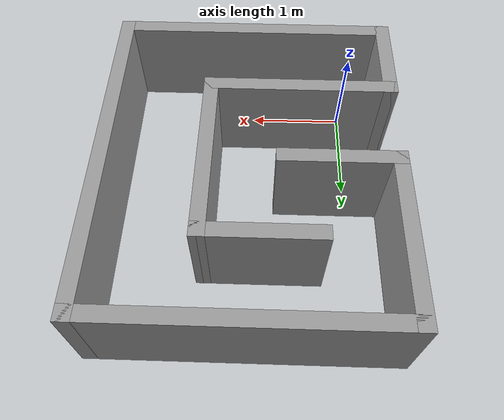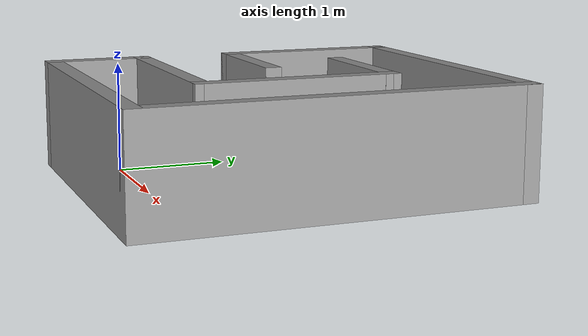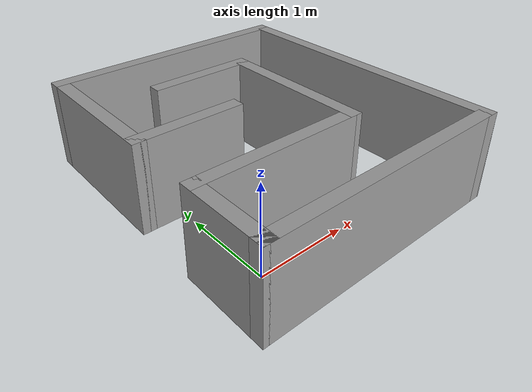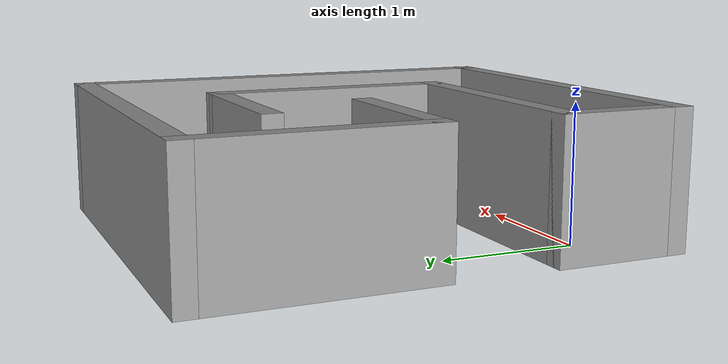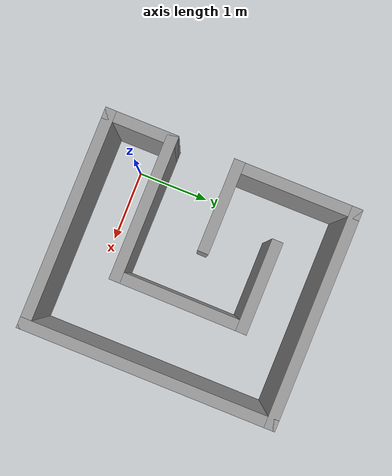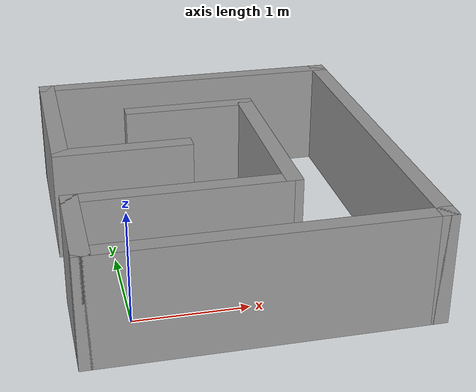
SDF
<?xml version='1.0'?>
<sdf version='1.7'>
  <model name='maze_1'>
    <pose>1.015 1.165 0 0 -0 0</pose>
    <link name='Wall_0'>
      <collision name='Wall_0_Collision'>
        <geometry>
          <box>
            <size>3 0.15 1</size>
          </box>
        </geometry>
        <pose>0 0 0.5 0 -0 0</pose>
      </collision>
      <visual name='Wall_0_Visual'>
        <pose>0 0 0.5 0 -0 0</pose>
        <geometry>
          <box>
            <size>3 0.15 1</size>
          </box>
        </geometry>
        <material>
          <script>
            <uri>file://media/materials/scripts/gazebo.material</uri>
            <name>Gazebo/Grey</name>
          </script>
          <ambient>1 1 1 1</ambient>
        </material>
        <meta>
          <layer>0</layer>
        </meta>
      </visual>
      <pose>-0 -1.675 0 0 -0 0</pose>
    </link>
    <link name='Wall_11'>
      <collision name='Wall_11_Collision'>
        <geometry>
          <box>
            <size>1 0.15 1</size>
          </box>
        </geometry>
        <pose>0 0 0.5 0 -0 0</pose>
      </collision>
      <visual name='Wall_11_Visual'>
        <pose>0 0 0.5 0 -0 0</pose>
        <geometry>
          <box>
            <size>1 0.15 1</size>
          </box>
        </geometry>
        <material>
          <script>
            <uri>file://media/materials/scripts/gazebo.material</uri>
            <name>Gazebo/Grey</name>
          </script>
          <ambient>1 1 1 1</ambient>
        </material>
        <meta>
          <layer>0</layer>
        </meta>
      </visual>
      <pose>-1.425 -1.25 0 0 -0 1.5708</pose>
    </link>
    <link name='Wall_12'>
      <collision name='Wall_12_Collision'>
        <geometry>
          <box>
            <size>2 0.15 1</size>
          </box>
        </geometry>
        <pose>0 0 0.5 0 -0 0</pose>
      </collision>
      <visual name='Wall_12_Visual'>
        <pose>0 0 0.5 0 -0 0</pose>
        <geometry>
          <box>
            <size>2 0.15 1</size>
          </box>
        </geometry>
        <material>
          <script>
            <uri>file://media/materials/scripts/gazebo.material</uri>
            <name>Gazebo/Grey</name>
          </script>
          <ambient>1 1 1 1</ambient>
        </material>
        <meta>
          <layer>0</layer>
        </meta>
      </visual>
      <pose>-0.5 -0.825 0 0 -0 0</pose>
    </link>
    <link name='Wall_13'>
      <collision name='Wall_13_Collision'>
        <geometry>
          <box>
            <size>1.87003 0.15 1</size>
          </box>
        </geometry>
        <pose>0 0 0.5 0 -0 0</pose>
      </collision>
      <visual name='Wall_13_Visual'>
        <pose>0 0 0.5 0 -0 0</pose>
        <geometry>
          <box>
            <size>1.87003 0.15 1</size>
          </box>
        </geometry>
        <material>
          <script>
            <uri>file://media/materials/scripts/gazebo.material</uri>
            <name>Gazebo/Grey</name>
          </script>
          <ambient>1 1 1 1</ambient>
        </material>
        <meta>
          <layer>0</layer>
        </meta>
      </visual>
      <pose>0.43 0.035 0 0 -0 1.56498</pose>
    </link>
    <link name='Wall_14'>
      <collision name='Wall_14_Collision'>
        <geometry>
          <box>
            <size>1.25 0.15 1</size>
          </box>
        </geometry>
        <pose>0 0 0.5 0 -0 0</pose>
      </collision>
      <visual name='Wall_14_Visual'>
        <pose>0 0 0.5 0 -0 0</pose>
        <geometry>
          <box>
            <size>1.25 0.15 1</size>
          </box>
        </geometry>
        <material>
          <script>
            <uri>file://media/materials/scripts/gazebo.material</uri>
            <name>Gazebo/Grey</name>
          </script>
          <ambient>1 1 1 1</ambient>
        </material>
        <meta>
          <layer>0</layer>
        </meta>
      </visual>
      <pose>-0.115 0.895 0 0 -0 3.14159</pose>
    </link>
    <link name='Wall_16'>
      <collision name='Wall_16_Collision'>
        <geometry>
          <box>
            <size>1.25 0.15 1</size>
          </box>
        </geometry>
        <pose>0 0 0.5 0 -0 0</pose>
      </collision>
      <visual name='Wall_16_Visual'>
        <pose>0 0 0.5 0 -0 0</pose>
        <geometry>
          <box>
            <size>1.25 0.15 1</size>
          </box>
        </geometry>
        <material>
          <script>
            <uri>file://media/materials/scripts/gazebo.material</uri>
            <name>Gazebo/Grey</name>
          </script>
          <ambient>1 1 1 1</ambient>
        </material>
        <meta>
          <layer>0</layer>
        </meta>
      </visual>
      <pose>-0.875 0.075 0 0 -0 0</pose>
    </link>
    <link name='Wall_4'>
      <collision name='Wall_4_Collision'>
        <geometry>
          <box>
            <size>3.5 0.15 1</size>
          </box>
        </geometry>
        <pose>0 0 0.5 0 -0 0</pose>
      </collision>
      <visual name='Wall_4_Visual'>
        <pose>0 0 0.5 0 -0 0</pose>
        <geometry>
          <box>
            <size>3.5 0.15 1</size>
          </box>
        </geometry>
        <material>
          <script>
            <uri>file://media/materials/scripts/gazebo.material</uri>
            <name>Gazebo/Grey</name>
          </script>
          <ambient>1 1 1 1</ambient>
        </material>
        <meta>
          <layer>0</layer>
        </meta>
      </visual>
      <pose>1.425 0 0 0 -0 1.5708</pose>
    </link>
    <link name='Wall_5'>
      <collision name='Wall_5_Collision'>
        <geometry>
          <box>
            <size>3 0.15 1</size>
          </box>
        </geometry>
        <pose>0 0 0.5 0 -0 0</pose>
      </collision>
      <visual name='Wall_5_Visual'>
        <pose>0 0 0.5 0 -0 0</pose>
        <geometry>
          <box>
            <size>3 0.15 1</size>
          </box>
        </geometry>
        <material>
          <script>
            <uri>file://media/materials/scripts/gazebo.material</uri>
            <name>Gazebo/Grey</name>
          </script>
          <ambient>1 1 1 1</ambient>
        </material>
        <meta>
          <layer>0</layer>
        </meta>
      </visual>
      <pose>-0 1.675 0 0 -0 3.14159</pose>
    </link>
    <link name='Wall_9'>
      <collision name='Wall_9_Collision'>
        <geometry>
          <box>
            <size>1.75 0.15 1</size>
          </box>
        </geometry>
        <pose>0 0 0.5 0 -0 0</pose>
      </collision>
      <visual name='Wall_9_Visual'>
        <pose>0 0 0.5 0 -0 0</pose>
        <geometry>
          <box>
            <size>1.75 0.15 1</size>
          </box>
        </geometry>
        <material>
          <script>
            <uri>file://media/materials/scripts/gazebo.material</uri>
            <name>Gazebo/Grey</name>
          </script>
          <ambient>1 1 1 1</ambient>
        </material>
        <meta>
          <layer>0</layer>
        </meta>
      </visual>
      <pose>-1.425 0.875 0 0 -0 -1.5708</pose>
    </link>
    <static>1</static>
  </model>
</sdf>
